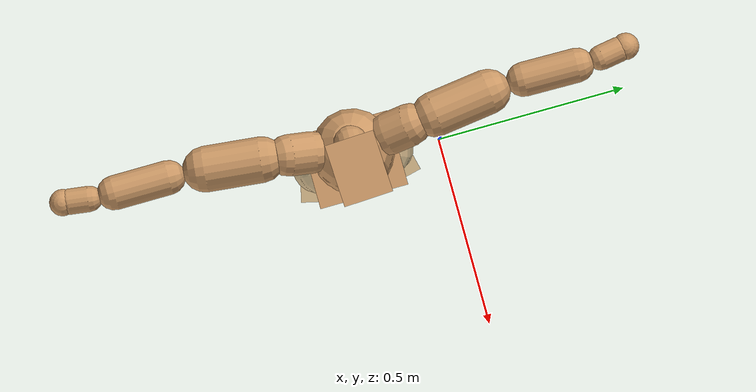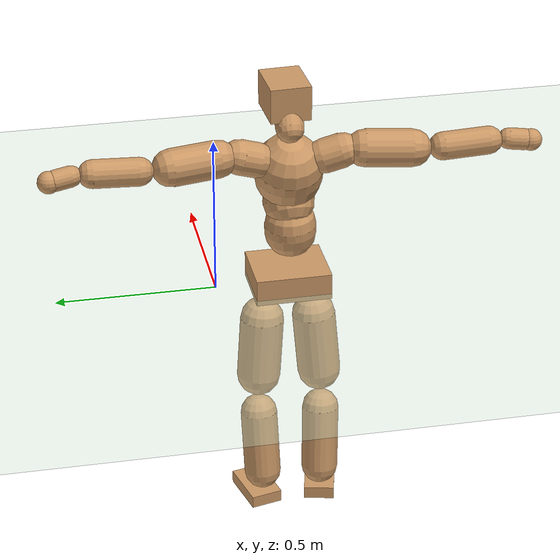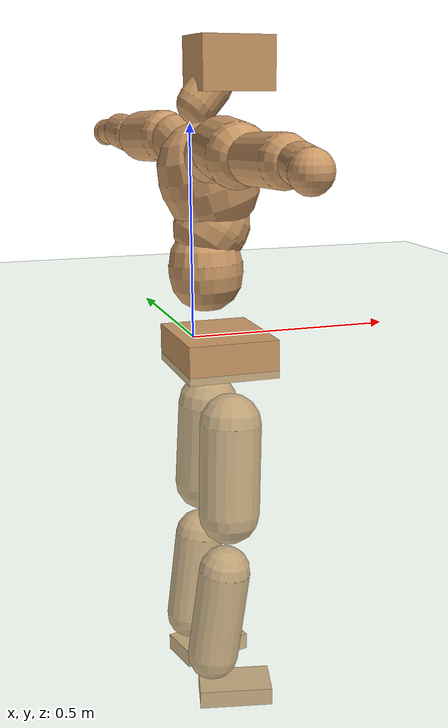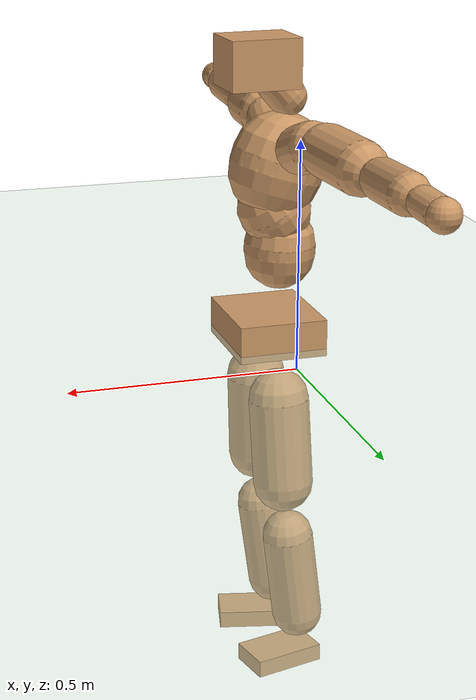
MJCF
<mujoco model="humanoid">
  <compiler coordinate="local" angle="radian"/>
  <default>
    <joint damping="0.0" armature="0.01" stiffness="0.0" limited="true"/>
    <geom conaffinity="1" condim="3" contype="7" margin="0.001" rgba="0.8 0.6 .4 1"/>
  </default>
  <asset>
    <texture type="skybox" builtin="gradient" rgb1=".4 .5 .6" rgb2="0 0 0" width="100" height="100"/>
    <texture builtin="flat" height="1278" mark="cross" markrgb="1 1 1" name="texgeom" random="0.01" rgb1="0.8 0.6 0.4" rgb2="0.8 0.6 0.4" type="cube" width="127"/>
    <texture builtin="checker" height="100" name="texplane" rgb1="0 0 0" rgb2="0.8 0.8 0.8" type="2d" width="100"/>
    <material name="MatPlane" reflectance="0.5" shininess="1" specular="1" texrepeat="60 60" texture="texplane"/>
    <material name="geom" texture="texgeom" texuniform="true"/>
  </asset>
  <worldbody>
    <light cutoff="100" diffuse="1 1 1" dir="-0 0 -1.3" directional="true" exponent="1" pos="0 0 1.3" specular=".1 .1 .1"/>
    <geom conaffinity="1" condim="3" name="floor" pos="0 0 0" rgba="0.8 0.9 0.8 1" size="100 100 .2" type="plane" material="MatPlane"/>
    <body name="Pelvis" pos="-0.0008 -0.2269 0.0359">
      <freejoint name="Pelvis"/>
      <geom type="box" contype="1" conaffinity="1" density="500" pos="-0.0058 -0.0000 -0.0128" size="0.0998 0.1182 0.0418" quat="1.0000 0.0000 0.0000 0.0023" name="Pelvis"/>
      <body name="L_Hip" pos="-0.0037 0.0793 -0.0917">
        <joint name="L_Hip_x" type="hinge" pos="0 0 0" axis="1 0 0" stiffness="800" damping="80" armature="0.02" range="-180.0000 180.0000"/>
        <joint name="L_Hip_y" type="hinge" pos="0 0 0" axis="0 1 0" stiffness="800" damping="80" armature="0.02" range="-180.0000 180.0000"/>
        <joint name="L_Hip_z" type="hinge" pos="0 0 0" axis="0 0 1" stiffness="800" damping="80" armature="0.02" range="-180.0000 180.0000"/>
        <geom type="capsule" contype="1" conaffinity="1" density="500" fromto="-0.0027 0.0044 -0.0666 -0.0108 0.0178 -0.2666" size="0.0685" name="L_Hip"/>
        <body name="L_Knee" pos="-0.0136 0.0222 -0.3332">
          <joint name="L_Knee_x" type="hinge" pos="0 0 0" axis="1 0 0" stiffness="800" damping="80" armature="0.02" range="-180.0000 180.0000"/>
          <joint name="L_Knee_y" type="hinge" pos="0 0 0" axis="0 1 0" stiffness="800" damping="80" armature="0.02" range="-180.0000 180.0000"/>
          <joint name="L_Knee_z" type="hinge" pos="0 0 0" axis="0 0 1" stiffness="800" damping="80" armature="0.02" range="-180.0000 180.0000"/>
          <geom type="capsule" contype="1" conaffinity="1" density="500" fromto="-0.0093 -0.0020 -0.0697 -0.0372 -0.0082 -0.2787" size="0.0581" name="L_Knee"/>
          <body name="L_Ankle" pos="-0.0465 -0.0102 -0.3484">
            <joint name="L_Ankle_x" type="hinge" pos="0 0 0" axis="1 0 0" stiffness="800" damping="80" armature="0.02" range="-180.0000 180.0000"/>
            <joint name="L_Ankle_y" type="hinge" pos="0 0 0" axis="0 1 0" stiffness="800" damping="80" armature="0.02" range="-180.0000 180.0000"/>
            <joint name="L_Ankle_z" type="hinge" pos="0 0 0" axis="0 0 1" stiffness="800" damping="80" armature="0.02" range="-180.0000 180.0000"/>
            <geom type="box" contype="1" conaffinity="1" density="500" pos="0.0560 0.0133 -0.0258" size="0.0827 0.0503 0.0198" quat="0.9932 0.0000 0.0000 0.1160" name="L_Ankle"/>
            <body name="L_Toe" pos="0.1119 0.0265 -0.0517">
              <joint name="L_Toe_x" type="hinge" pos="0 0 0" axis="1 0 0" stiffness="500" damping="50" armature="0.02" range="-180.0000 180.0000"/>
              <joint name="L_Toe_y" type="hinge" pos="0 0 0" axis="0 1 0" stiffness="500" damping="50" armature="0.02" range="-180.0000 180.0000"/>
              <joint name="L_Toe_z" type="hinge" pos="0 0 0" axis="0 0 1" stiffness="500" damping="50" armature="0.02" range="-180.0000 180.0000"/>
              <geom type="box" contype="1" conaffinity="1" density="500" pos="0.0000 0.0000 0.0262" size="0.001 0.0025 0.001" quat="0.9925 0.0000 0.0000 0.1223" name="L_Toe"/>
            </body>
          </body>
        </body>
      </body>
      <body name="R_Hip" pos="-0.0017 -0.0767 -0.0914">
        <joint name="R_Hip_x" type="hinge" pos="0 0 0" axis="1 0 0" stiffness="800" damping="80" armature="0.02" range="-180.0000 180.0000"/>
        <joint name="R_Hip_y" type="hinge" pos="0 0 0" axis="0 1 0" stiffness="800" damping="80" armature="0.02" range="-180.0000 180.0000"/>
        <joint name="R_Hip_z" type="hinge" pos="0 0 0" axis="0 0 1" stiffness="800" damping="80" armature="0.02" range="-180.0000 180.0000"/>
        <geom type="capsule" contype="1" conaffinity="1" density="500" fromto="-0.0032 -0.0055 -0.0675 -0.0130 -0.0221 -0.2702" size="0.0679" name="R_Hip"/>
        <body name="R_Knee" pos="-0.0162 -0.0277 -0.3377">
          <joint name="R_Knee_x" type="hinge" pos="0 0 0" axis="1 0 0" stiffness="800" damping="80" armature="0.02" range="-180.0000 180.0000"/>
          <joint name="R_Knee_y" type="hinge" pos="0 0 0" axis="0 1 0" stiffness="800" damping="80" armature="0.02" range="-180.0000 180.0000"/>
          <joint name="R_Knee_z" type="hinge" pos="0 0 0" axis="0 0 1" stiffness="800" damping="80" armature="0.02" range="-180.0000 180.0000"/>
          <geom type="capsule" contype="1" conaffinity="1" density="500" fromto="-0.0093 0.0023 -0.0698 -0.0371 0.0092 -0.2790" size="0.058" name="R_Knee"/>
          <body name="R_Ankle" pos="-0.0464 0.0115 -0.3488">
            <joint name="R_Ankle_x" type="hinge" pos="0 0 0" axis="1 0 0" stiffness="800" damping="80" armature="0.02" range="-180.0000 180.0000"/>
            <joint name="R_Ankle_y" type="hinge" pos="0 0 0" axis="0 1 0" stiffness="800" damping="80" armature="0.02" range="-180.0000 180.0000"/>
            <joint name="R_Ankle_z" type="hinge" pos="0 0 0" axis="0 0 1" stiffness="800" damping="80" armature="0.02" range="-180.0000 180.0000"/>
            <geom type="box" contype="1" conaffinity="1" density="500" pos="0.0581 -0.0134 -0.0218" size="0.0822 0.0484 0.0202" quat="0.9935 0.0000 0.0000 -0.1134" name="R_Ankle"/>
            <body name="R_Toe" pos="0.1162 -0.0269 -0.0436">
              <joint name="R_Toe_x" type="hinge" pos="0 0 0" axis="1 0 0" stiffness="500" damping="50" armature="0.02" range="-180.0000 180.0000"/>
              <joint name="R_Toe_y" type="hinge" pos="0 0 0" axis="0 1 0" stiffness="500" damping="50" armature="0.02" range="-180.0000 180.0000"/>
              <joint name="R_Toe_z" type="hinge" pos="0 0 0" axis="0 0 1" stiffness="500" damping="50" armature="0.02" range="-180.0000 180.0000"/>
              <geom type="box" contype="1" conaffinity="1" density="500" pos="0.0000 0.0000 0.0237" size="0.001 0.0024 0.0011" quat="0.9946 0.0000 0.0000 -0.1036" name="R_Toe"/>
            </body>
          </body>
        </body>
      </body>
      <body name="Torso" pos="-0.0297 -0.0028 0.1064">
        <joint name="Torso_x" type="hinge" pos="0 0 0" axis="1 0 0" stiffness="1000" damping="100" armature="0.02" range="-180.0000 180.0000"/>
        <joint name="Torso_y" type="hinge" pos="0 0 0" axis="0 1 0" stiffness="1000" damping="100" armature="0.02" range="-180.0000 180.0000"/>
        <joint name="Torso_z" type="hinge" pos="0 0 0" axis="0 0 1" stiffness="1000" damping="100" armature="0.02" range="-180.0000 180.0000"/>
        <geom type="capsule" contype="1" conaffinity="1" density="500" fromto="-0.0033 0.0023 0.0765 -0.0022 0.0015 0.0510" size="0.0801" name="Torso"/>
        <body name="Spine" pos="-0.0055 0.0038 0.1275">
          <joint name="Spine_x" type="hinge" pos="0 0 0" axis="1 0 0" stiffness="1000" damping="100" armature="0.02" range="-180.0000 180.0000"/>
          <joint name="Spine_y" type="hinge" pos="0 0 0" axis="0 1 0" stiffness="1000" damping="100" armature="0.02" range="-180.0000 180.0000"/>
          <joint name="Spine_z" type="hinge" pos="0 0 0" axis="0 0 1" stiffness="1000" damping="100" armature="0.02" range="-180.0000 180.0000"/>
          <geom type="capsule" contype="1" conaffinity="1" density="500" fromto="0.0211 0.0011 0.0307 0.0141 0.0007 0.0204" size="0.0798" name="Spine"/>
          <body name="Chest" pos="0.0351 0.0019 0.0511">
            <joint name="Chest_x" type="hinge" pos="0 0 0" axis="1 0 0" stiffness="1000" damping="100" armature="0.02" range="-180.0000 180.0000"/>
            <joint name="Chest_y" type="hinge" pos="0 0 0" axis="0 1 0" stiffness="1000" damping="100" armature="0.02" range="-180.0000 180.0000"/>
            <joint name="Chest_z" type="hinge" pos="0 0 0" axis="0 0 1" stiffness="1000" damping="100" armature="0.02" range="-180.0000 180.0000"/>
            <geom type="capsule" contype="1" conaffinity="1" density="500" fromto="-0.0281 -0.0002 0.0910 -0.0187 -0.0001 0.0607" size="0.1045" name="Chest"/>
            <body name="Neck" pos="-0.0546 0 0.213">
              <joint name="Neck_x" type="hinge" pos="0 0 0" axis="1 0 0" stiffness="500" damping="50" armature="0.02" range="-180.0000 180.0000"/>
              <joint name="Neck_y" type="hinge" pos="0 0 0" axis="0 1 0" stiffness="500" damping="50" armature="0.02" range="-180.0000 180.0000"/>
              <joint name="Neck_z" type="hinge" pos="0 0 0" axis="0 0 1" stiffness="500" damping="50" armature="0.02" range="-180.0000 180.0000"/>
              <geom type="capsule" contype="1" conaffinity="1" density="500" fromto="0.0103 0.0001 0.0121 0.0413 0.0005 0.0483" size="0.0437" name="Neck"/>
              <body name="Head" pos="0.0517 0.0006 0.0603">
                <joint name="Head_x" type="hinge" pos="0 0 0" axis="1 0 0" stiffness="500" damping="50" armature="0.02" range="-180.0000 180.0000"/>
                <joint name="Head_y" type="hinge" pos="0 0 0" axis="0 1 0" stiffness="500" damping="50" armature="0.02" range="-180.0000 180.0000"/>
                <joint name="Head_z" type="hinge" pos="0 0 0" axis="0 0 1" stiffness="500" damping="50" armature="0.02" range="-180.0000 180.0000"/>
                <geom type="box" contype="1" conaffinity="1" density="500" pos="0.0268 0.0013 0.0312" size="0.079 0.0626 0.0544" quat="0.9997 0.0000 0.0000 0.0243" name="Head"/>
              </body>
            </body>
            <body name="L_Thorax" pos="-0.0399 0.0811 0.1223">
              <joint name="L_Thorax_x" type="hinge" pos="0 0 0" axis="1 0 0" stiffness="500" damping="50" armature="0.02" range="-180.0000 180.0000"/>
              <joint name="L_Thorax_y" type="hinge" pos="0 0 0" axis="0 1 0" stiffness="500" damping="50" armature="0.02" range="-180.0000 180.0000"/>
              <joint name="L_Thorax_z" type="hinge" pos="0 0 0" axis="0 0 1" stiffness="500" damping="50" armature="0.02" range="-180.0000 180.0000"/>
              <geom type="capsule" contype="1" conaffinity="1" density="500" fromto="-0.0023 0.0184 0.0063 -0.0093 0.0735 0.0252" size="0.0545" name="L_Thorax"/>
              <body name="L_Shoulder" pos="-0.0116 0.0919 0.0315">
                <joint name="L_Shoulder_x" type="hinge" pos="0 0 0" axis="1 0 0" stiffness="500" damping="50" armature="0.02" range="-720.0000 720.0000"/>
                <joint name="L_Shoulder_y" type="hinge" pos="0 0 0" axis="0 1 0" stiffness="500" damping="50" armature="0.02" range="-720.0000 720.0000"/>
                <joint name="L_Shoulder_z" type="hinge" pos="0 0 0" axis="0 0 1" stiffness="500" damping="50" armature="0.02" range="-720.0000 720.0000"/>
                <geom type="capsule" contype="1" conaffinity="1" density="500" fromto="-0.0064 0.0481 -0.0019 -0.0255 0.1926 -0.0074" size="0.0578" name="L_Shoulder"/>
                <body name="L_Elbow" pos="-0.0319 0.2407 -0.0093">
                  <joint name="L_Elbow_x" type="hinge" pos="0 0 0" axis="1 0 0" stiffness="500" damping="50" armature="0.02" range="-720.0000 720.0000"/>
                  <joint name="L_Elbow_y" type="hinge" pos="0 0 0" axis="0 1 0" stiffness="500" damping="50" armature="0.02" range="-720.0000 720.0000"/>
                  <joint name="L_Elbow_z" type="hinge" pos="0 0 0" axis="0 0 1" stiffness="500" damping="50" armature="0.02" range="-720.0000 720.0000"/>
                  <geom type="capsule" contype="1" conaffinity="1" density="500" fromto="0.0006 0.0462 0.0016 0.0022 0.1847 0.0065" size="0.0437" name="L_Elbow"/>
                  <body name="L_Wrist" pos="0.0028 0.2308 0.0082">
                    <joint name="L_Wrist_x" type="hinge" pos="0 0 0" axis="1 0 0" stiffness="300" damping="30" armature="0.02" range="-180.0000 180.0000"/>
                    <joint name="L_Wrist_y" type="hinge" pos="0 0 0" axis="0 1 0" stiffness="300" damping="30" armature="0.02" range="-180.0000 180.0000"/>
                    <joint name="L_Wrist_z" type="hinge" pos="0 0 0" axis="0 0 1" stiffness="300" damping="30" armature="0.02" range="-180.0000 180.0000"/>
                    <geom type="capsule" contype="1" conaffinity="1" density="500" fromto="-0.0027 0.0169 -0.0020 -0.0109 0.0674 -0.0080" size="0.0324" name="L_Wrist"/>
                    <body name="L_Hand" pos="-0.0136 0.0843 -0.01">
                      <joint name="L_Hand_x" type="hinge" pos="0 0 0" axis="1 0 0" stiffness="300" damping="30" armature="0.02" range="-180.0000 180.0000"/>
                      <joint name="L_Hand_y" type="hinge" pos="0 0 0" axis="0 1 0" stiffness="300" damping="30" armature="0.02" range="-180.0000 180.0000"/>
                      <joint name="L_Hand_z" type="hinge" pos="0 0 0" axis="0 0 1" stiffness="300" damping="30" armature="0.02" range="-180.0000 180.0000"/>
                      <geom type="sphere" contype="1" conaffinity="1" density="500" size="0.0342" pos="0.0000 0.0000 0.0000" name="L_Hand"/>
                    </body>
                  </body>
                </body>
              </body>
            </body>
            <body name="R_Thorax" pos="-0.046 -0.082 0.1198">
              <joint name="R_Thorax_x" type="hinge" pos="0 0 0" axis="1 0 0" stiffness="500" damping="50" armature="0.02" range="-180.0000 180.0000"/>
              <joint name="R_Thorax_y" type="hinge" pos="0 0 0" axis="0 1 0" stiffness="500" damping="50" armature="0.02" range="-180.0000 180.0000"/>
              <joint name="R_Thorax_z" type="hinge" pos="0 0 0" axis="0 0 1" stiffness="500" damping="50" armature="0.02" range="-180.0000 180.0000"/>
              <geom type="capsule" contype="1" conaffinity="1" density="500" fromto="-0.0026 -0.0193 0.0063 -0.0105 -0.0771 0.0251" size="0.0535" name="R_Thorax"/>
              <body name="R_Shoulder" pos="-0.0132 -0.0964 0.0313">
                <joint name="R_Shoulder_x" type="hinge" pos="0 0 0" axis="1 0 0" stiffness="500" damping="50" armature="0.02" range="-720.0000 720.0000"/>
                <joint name="R_Shoulder_y" type="hinge" pos="0 0 0" axis="0 1 0" stiffness="500" damping="50" armature="0.02" range="-720.0000 720.0000"/>
                <joint name="R_Shoulder_z" type="hinge" pos="0 0 0" axis="0 0 1" stiffness="500" damping="50" armature="0.02" range="-720.0000 720.0000"/>
                <geom type="capsule" contype="1" conaffinity="1" density="500" fromto="-0.0049 -0.0476 -0.0021 -0.0197 -0.1903 -0.0085" size="0.0586" name="R_Shoulder"/>
                <body name="R_Elbow" pos="-0.0246 -0.2378 -0.0106">
                  <joint name="R_Elbow_x" type="hinge" pos="0 0 0" axis="1 0 0" stiffness="500" damping="50" armature="0.02" range="-720.0000 720.0000"/>
                  <joint name="R_Elbow_y" type="hinge" pos="0 0 0" axis="0 1 0" stiffness="500" damping="50" armature="0.02" range="-720.0000 720.0000"/>
                  <joint name="R_Elbow_z" type="hinge" pos="0 0 0" axis="0 0 1" stiffness="500" damping="50" armature="0.02" range="-720.0000 720.0000"/>
                  <geom type="capsule" contype="1" conaffinity="1" density="500" fromto="0.0003 -0.0471 0.0019 0.0011 -0.1883 0.0077" size="0.0437" name="R_Elbow"/>
                  <body name="R_Wrist" pos="0.0013 -0.2354 0.0096">
                    <joint name="R_Wrist_x" type="hinge" pos="0 0 0" axis="1 0 0" stiffness="300" damping="30" armature="0.02" range="-180.0000 180.0000"/>
                    <joint name="R_Wrist_y" type="hinge" pos="0 0 0" axis="0 1 0" stiffness="300" damping="30" armature="0.02" range="-180.0000 180.0000"/>
                    <joint name="R_Wrist_z" type="hinge" pos="0 0 0" axis="0 0 1" stiffness="300" damping="30" armature="0.02" range="-180.0000 180.0000"/>
                    <geom type="capsule" contype="1" conaffinity="1" density="500" fromto="-0.0022 -0.0168 -0.0015 -0.0088 -0.0674 -0.0061" size="0.033" name="R_Wrist"/>
                    <body name="R_Hand" pos="-0.011 -0.0842 -0.0076">
                      <joint name="R_Hand_x" type="hinge" pos="0 0 0" axis="1 0 0" stiffness="300" damping="30" armature="0.02" range="-180.0000 180.0000"/>
                      <joint name="R_Hand_y" type="hinge" pos="0 0 0" axis="0 1 0" stiffness="300" damping="30" armature="0.02" range="-180.0000 180.0000"/>
                      <joint name="R_Hand_z" type="hinge" pos="0 0 0" axis="0 0 1" stiffness="300" damping="30" armature="0.02" range="-180.0000 180.0000"/>
                      <geom type="sphere" contype="1" conaffinity="1" density="500" size="0.0341" pos="0.0000 0.0000 0.0000" name="R_Hand"/>
                    </body>
                  </body>
                </body>
              </body>
            </body>
          </body>
        </body>
      </body>
    </body>
  </worldbody>
  <actuator>
    <motor name="L_Hip_x" joint="L_Hip_x" gear="500"/>
    <motor name="L_Hip_y" joint="L_Hip_y" gear="500"/>
    <motor name="L_Hip_z" joint="L_Hip_z" gear="500"/>
    <motor name="L_Knee_x" joint="L_Knee_x" gear="500"/>
    <motor name="L_Knee_y" joint="L_Knee_y" gear="500"/>
    <motor name="L_Knee_z" joint="L_Knee_z" gear="500"/>
    <motor name="L_Ankle_x" joint="L_Ankle_x" gear="500"/>
    <motor name="L_Ankle_y" joint="L_Ankle_y" gear="500"/>
    <motor name="L_Ankle_z" joint="L_Ankle_z" gear="500"/>
    <motor name="L_Toe_x" joint="L_Toe_x" gear="500"/>
    <motor name="L_Toe_y" joint="L_Toe_y" gear="500"/>
    <motor name="L_Toe_z" joint="L_Toe_z" gear="500"/>
    <motor name="R_Hip_x" joint="R_Hip_x" gear="500"/>
    <motor name="R_Hip_y" joint="R_Hip_y" gear="500"/>
    <motor name="R_Hip_z" joint="R_Hip_z" gear="500"/>
    <motor name="R_Knee_x" joint="R_Knee_x" gear="500"/>
    <motor name="R_Knee_y" joint="R_Knee_y" gear="500"/>
    <motor name="R_Knee_z" joint="R_Knee_z" gear="500"/>
    <motor name="R_Ankle_x" joint="R_Ankle_x" gear="500"/>
    <motor name="R_Ankle_y" joint="R_Ankle_y" gear="500"/>
    <motor name="R_Ankle_z" joint="R_Ankle_z" gear="500"/>
    <motor name="R_Toe_x" joint="R_Toe_x" gear="500"/>
    <motor name="R_Toe_y" joint="R_Toe_y" gear="500"/>
    <motor name="R_Toe_z" joint="R_Toe_z" gear="500"/>
    <motor name="Torso_x" joint="Torso_x" gear="500"/>
    <motor name="Torso_y" joint="Torso_y" gear="500"/>
    <motor name="Torso_z" joint="Torso_z" gear="500"/>
    <motor name="Spine_x" joint="Spine_x" gear="500"/>
    <motor name="Spine_y" joint="Spine_y" gear="500"/>
    <motor name="Spine_z" joint="Spine_z" gear="500"/>
    <motor name="Chest_x" joint="Chest_x" gear="500"/>
    <motor name="Chest_y" joint="Chest_y" gear="500"/>
    <motor name="Chest_z" joint="Chest_z" gear="500"/>
    <motor name="Neck_x" joint="Neck_x" gear="500"/>
    <motor name="Neck_y" joint="Neck_y" gear="500"/>
    <motor name="Neck_z" joint="Neck_z" gear="500"/>
    <motor name="Head_x" joint="Head_x" gear="500"/>
    <motor name="Head_y" joint="Head_y" gear="500"/>
    <motor name="Head_z" joint="Head_z" gear="500"/>
    <motor name="L_Thorax_x" joint="L_Thorax_x" gear="500"/>
    <motor name="L_Thorax_y" joint="L_Thorax_y" gear="500"/>
    <motor name="L_Thorax_z" joint="L_Thorax_z" gear="500"/>
    <motor name="L_Shoulder_x" joint="L_Shoulder_x" gear="500"/>
    <motor name="L_Shoulder_y" joint="L_Shoulder_y" gear="500"/>
    <motor name="L_Shoulder_z" joint="L_Shoulder_z" gear="500"/>
    <motor name="L_Elbow_x" joint="L_Elbow_x" gear="500"/>
    <motor name="L_Elbow_y" joint="L_Elbow_y" gear="500"/>
    <motor name="L_Elbow_z" joint="L_Elbow_z" gear="500"/>
    <motor name="L_Wrist_x" joint="L_Wrist_x" gear="500"/>
    <motor name="L_Wrist_y" joint="L_Wrist_y" gear="500"/>
    <motor name="L_Wrist_z" joint="L_Wrist_z" gear="500"/>
    <motor name="L_Hand_x" joint="L_Hand_x" gear="500"/>
    <motor name="L_Hand_y" joint="L_Hand_y" gear="500"/>
    <motor name="L_Hand_z" joint="L_Hand_z" gear="500"/>
    <motor name="R_Thorax_x" joint="R_Thorax_x" gear="500"/>
    <motor name="R_Thorax_y" joint="R_Thorax_y" gear="500"/>
    <motor name="R_Thorax_z" joint="R_Thorax_z" gear="500"/>
    <motor name="R_Shoulder_x" joint="R_Shoulder_x" gear="500"/>
    <motor name="R_Shoulder_y" joint="R_Shoulder_y" gear="500"/>
    <motor name="R_Shoulder_z" joint="R_Shoulder_z" gear="500"/>
    <motor name="R_Elbow_x" joint="R_Elbow_x" gear="500"/>
    <motor name="R_Elbow_y" joint="R_Elbow_y" gear="500"/>
    <motor name="R_Elbow_z" joint="R_Elbow_z" gear="500"/>
    <motor name="R_Wrist_x" joint="R_Wrist_x" gear="500"/>
    <motor name="R_Wrist_y" joint="R_Wrist_y" gear="500"/>
    <motor name="R_Wrist_z" joint="R_Wrist_z" gear="500"/>
    <motor name="R_Hand_x" joint="R_Hand_x" gear="500"/>
    <motor name="R_Hand_y" joint="R_Hand_y" gear="500"/>
    <motor name="R_Hand_z" joint="R_Hand_z" gear="500"/>
  </actuator>
  <contact>
    <exclude body1="Torso" body2="Chest"/>
    <exclude body1="Head" body2="Chest"/>
    <exclude body1="R_Knee" body2="R_Toe"/>
    <exclude body1="R_Knee" body2="L_Ankle"/>
    <exclude body1="R_Knee" body2="L_Toe"/>
    <exclude body1="L_Knee" body2="L_Toe"/>
    <exclude body1="L_Knee" body2="R_Ankle"/>
    <exclude body1="L_Knee" body2="R_Toe"/>
    <exclude body1="L_Shoulder" body2="Chest"/>
    <exclude body1="R_Shoulder" body2="Chest"/>
  </contact>
  <sensor/>
  <size njmax="700" nconmax="700"/>
</mujoco>
